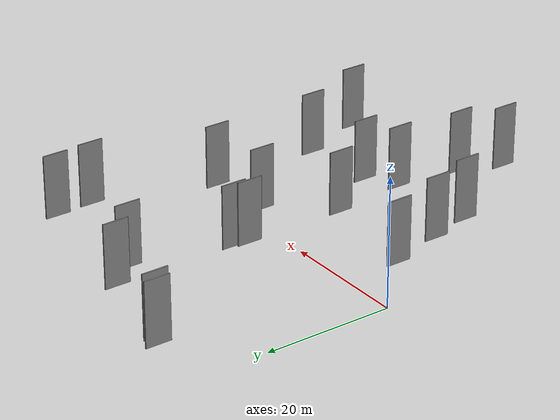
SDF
<sdf version="1.6">
 <world name="default">
  <scene>
   <sky><clouds><speed>12</speed></clouds></sky>
   <ambient>0.4 0.4 0.4 1</ambient>
   <background>0.7 0.7 0.7 1</background>
   <shadows>1</shadows>
  </scene>
  <gravity>0 0 -9.8066</gravity>
  <magnetic_field>6e-06 2.3e-05 -4.2e-05</magnetic_field>
  <physics default="0" name="default_physics" type="ode">
   <ode>
    <solver>
     <type>quick</type>
     <iters>10</iters>
     <sor>1.0</sor>
     <use_dynamic_moi_rescaling>0</use_dynamic_moi_rescaling>
    </solver>
    <constraints>
     <cfm>0</cfm>
     <erp>0.2</erp>
     <contact_max_correcting_vel>100</contact_max_correcting_vel>
     <contact_surface_layer>0.001</contact_surface_layer>
    </constraints>
   </ode>
   <max_step_size>0.004</max_step_size>
   <real_time_factor>1</real_time_factor>
   <real_time_update_rate>250</real_time_update_rate>
  </physics>
  <light name="sun" type="directional">
   <pose>0 0 10 0 0 0</pose>
   <diffuse>0.8 0.8 0.8 1</diffuse>
   <specular>0.2 0.2 0.2 1</specular>
   <attenuation>
    <range>1000</range>
    <constant>0.9</constant>
    <linear>0.01</linear>
    <quadratic>0.001</quadratic>
   </attenuation>
   <direction>-0.5 0.1 -0.9</direction>
  </light>
  <model name="grey_wall_1">
   <static>1</static>
   <pose>22.5808 -9.1110 2.5 0.000000 0.000000 1.570796</pose>
   <link name="link">
    <pose>0 0 5.00 0 0 0</pose>
    <collision name="collision"><geometry><box><size>4.00 0.2 10.00</size></box></geometry></collision>
    <visual name="visual">
     <cast_shadows>0</cast_shadows>
     <geometry><box><size>4.00 0.2 10.00</size></box></geometry>
     <material>
      <script>
       <uri>model://grey_wall/materials/scripts</uri>
       <uri>model://grey_wall/materials/textures</uri>
       <name>vrc/grey_wall</name>
      </script>
     </material>
    </visual>
   </link>
  </model>
  <model name="grey_wall_2">
   <static>1</static>
   <pose>5.6764 -6.3411 2.5 0.000000 0.000000 1.570796</pose>
   <link name="link">
    <pose>0 0 5.00 0 0 0</pose>
    <collision name="collision"><geometry><box><size>4.00 0.2 10.00</size></box></geometry></collision>
    <visual name="visual">
     <cast_shadows>0</cast_shadows>
     <geometry><box><size>4.00 0.2 10.00</size></box></geometry>
     <material>
      <script>
       <uri>model://grey_wall/materials/scripts</uri>
       <uri>model://grey_wall/materials/textures</uri>
       <name>vrc/grey_wall</name>
      </script>
     </material>
    </visual>
   </link>
  </model>
  <model name="grey_wall_3">
   <static>1</static>
   <pose>45.6201 24.6832 2.5 0.000000 0.000000 1.570796</pose>
   <link name="link">
    <pose>0 0 5.00 0 0 0</pose>
    <collision name="collision"><geometry><box><size>4.00 0.2 10.00</size></box></geometry></collision>
    <visual name="visual">
     <cast_shadows>0</cast_shadows>
     <geometry><box><size>4.00 0.2 10.00</size></box></geometry>
     <material>
      <script>
       <uri>model://grey_wall/materials/scripts</uri>
       <uri>model://grey_wall/materials/textures</uri>
       <name>vrc/grey_wall</name>
      </script>
     </material>
    </visual>
   </link>
  </model>
  <model name="grey_wall_4">
   <static>1</static>
   <pose>26.6358 24.5391 2.5 0.000000 0.000000 1.570796</pose>
   <link name="link">
    <pose>0 0 5.00 0 0 0</pose>
    <collision name="collision"><geometry><box><size>4.00 0.2 10.00</size></box></geometry></collision>
    <visual name="visual">
     <cast_shadows>0</cast_shadows>
     <geometry><box><size>4.00 0.2 10.00</size></box></geometry>
     <material>
      <script>
       <uri>model://grey_wall/materials/scripts</uri>
       <uri>model://grey_wall/materials/textures</uri>
       <name>vrc/grey_wall</name>
      </script>
     </material>
    </visual>
   </link>
  </model>
  <model name="grey_wall_5">
   <static>1</static>
   <pose>22.5919 6.9764 2.5 0.000000 0.000000 1.570796</pose>
   <link name="link">
    <pose>0 0 5.00 0 0 0</pose>
    <collision name="collision"><geometry><box><size>4.00 0.2 10.00</size></box></geometry></collision>
    <visual name="visual">
     <cast_shadows>0</cast_shadows>
     <geometry><box><size>4.00 0.2 10.00</size></box></geometry>
     <material>
      <script>
       <uri>model://grey_wall/materials/scripts</uri>
       <uri>model://grey_wall/materials/textures</uri>
       <name>vrc/grey_wall</name>
      </script>
     </material>
    </visual>
   </link>
  </model>
  <model name="grey_wall_6">
   <static>1</static>
   <pose>45.9478 18.6932 2.5 0.000000 0.000000 1.570796</pose>
   <link name="link">
    <pose>0 0 5.00 0 0 0</pose>
    <collision name="collision"><geometry><box><size>4.00 0.2 10.00</size></box></geometry></collision>
    <visual name="visual">
     <cast_shadows>0</cast_shadows>
     <geometry><box><size>4.00 0.2 10.00</size></box></geometry>
     <material>
      <script>
       <uri>model://grey_wall/materials/scripts</uri>
       <uri>model://grey_wall/materials/textures</uri>
       <name>vrc/grey_wall</name>
      </script>
     </material>
    </visual>
   </link>
  </model>
  <model name="grey_wall_7">
   <static>1</static>
   <pose>23.0688 9.3135 2.5 0.000000 0.000000 1.570796</pose>
   <link name="link">
    <pose>0 0 5.00 0 0 0</pose>
    <collision name="collision"><geometry><box><size>4.00 0.2 10.00</size></box></geometry></collision>
    <visual name="visual">
     <cast_shadows>0</cast_shadows>
     <geometry><box><size>4.00 0.2 10.00</size></box></geometry>
     <material>
      <script>
       <uri>model://grey_wall/materials/scripts</uri>
       <uri>model://grey_wall/materials/textures</uri>
       <name>vrc/grey_wall</name>
      </script>
     </material>
    </visual>
   </link>
  </model>
  <model name="grey_wall_8">
   <static>1</static>
   <pose>8.5506 31.7400 2.5 0.000000 0.000000 1.570796</pose>
   <link name="link">
    <pose>0 0 5.00 0 0 0</pose>
    <collision name="collision"><geometry><box><size>4.00 0.2 10.00</size></box></geometry></collision>
    <visual name="visual">
     <cast_shadows>0</cast_shadows>
     <geometry><box><size>4.00 0.2 10.00</size></box></geometry>
     <material>
      <script>
       <uri>model://grey_wall/materials/scripts</uri>
       <uri>model://grey_wall/materials/textures</uri>
       <name>vrc/grey_wall</name>
      </script>
     </material>
    </visual>
   </link>
  </model>
  <model name="grey_wall_9">
   <static>1</static>
   <pose>10.1609 -22.2072 2.5 0.000000 0.000000 1.570796</pose>
   <link name="link">
    <pose>0 0 5.00 0 0 0</pose>
    <collision name="collision"><geometry><box><size>4.00 0.2 10.00</size></box></geometry></collision>
    <visual name="visual">
     <cast_shadows>0</cast_shadows>
     <geometry><box><size>4.00 0.2 10.00</size></box></geometry>
     <material>
      <script>
       <uri>model://grey_wall/materials/scripts</uri>
       <uri>model://grey_wall/materials/textures</uri>
       <name>vrc/grey_wall</name>
      </script>
     </material>
    </visual>
   </link>
  </model>
  <model name="grey_wall_10">
   <static>1</static>
   <pose>30.0182 -0.4615 2.5 0.000000 0.000000 1.570796</pose>
   <link name="link">
    <pose>0 0 5.00 0 0 0</pose>
    <collision name="collision"><geometry><box><size>4.00 0.2 10.00</size></box></geometry></collision>
    <visual name="visual">
     <cast_shadows>0</cast_shadows>
     <geometry><box><size>4.00 0.2 10.00</size></box></geometry>
     <material>
      <script>
       <uri>model://grey_wall/materials/scripts</uri>
       <uri>model://grey_wall/materials/textures</uri>
       <name>vrc/grey_wall</name>
      </script>
     </material>
    </visual>
   </link>
  </model>
  <model name="grey_wall_11">
   <static>1</static>
   <pose>22.8264 -31.7088 2.5 0.000000 0.000000 1.570796</pose>
   <link name="link">
    <pose>0 0 5.00 0 0 0</pose>
    <collision name="collision"><geometry><box><size>4.00 0.2 10.00</size></box></geometry></collision>
    <visual name="visual">
     <cast_shadows>0</cast_shadows>
     <geometry><box><size>4.00 0.2 10.00</size></box></geometry>
     <material>
      <script>
       <uri>model://grey_wall/materials/scripts</uri>
       <uri>model://grey_wall/materials/textures</uri>
       <name>vrc/grey_wall</name>
      </script>
     </material>
    </visual>
   </link>
  </model>
  <model name="grey_wall_12">
   <static>1</static>
   <pose>6.7875 32.5967 2.5 0.000000 0.000000 1.570796</pose>
   <link name="link">
    <pose>0 0 5.00 0 0 0</pose>
    <collision name="collision"><geometry><box><size>4.00 0.2 10.00</size></box></geometry></collision>
    <visual name="visual">
     <cast_shadows>0</cast_shadows>
     <geometry><box><size>4.00 0.2 10.00</size></box></geometry>
     <material>
      <script>
       <uri>model://grey_wall/materials/scripts</uri>
       <uri>model://grey_wall/materials/textures</uri>
       <name>vrc/grey_wall</name>
      </script>
     </material>
    </visual>
   </link>
  </model>
  <model name="grey_wall_13">
   <static>1</static>
   <pose>20.1385 -38.0439 2.5 0.000000 0.000000 1.570796</pose>
   <link name="link">
    <pose>0 0 5.00 0 0 0</pose>
    <collision name="collision"><geometry><box><size>4.00 0.2 10.00</size></box></geometry></collision>
    <visual name="visual">
     <cast_shadows>0</cast_shadows>
     <geometry><box><size>4.00 0.2 10.00</size></box></geometry>
     <material>
      <script>
       <uri>model://grey_wall/materials/scripts</uri>
       <uri>model://grey_wall/materials/textures</uri>
       <name>vrc/grey_wall</name>
      </script>
     </material>
    </visual>
   </link>
  </model>
  <model name="grey_wall_14">
   <static>1</static>
   <pose>23.0761 28.6633 2.5 0.000000 0.000000 1.570796</pose>
   <link name="link">
    <pose>0 0 5.00 0 0 0</pose>
    <collision name="collision"><geometry><box><size>4.00 0.2 10.00</size></box></geometry></collision>
    <visual name="visual">
     <cast_shadows>0</cast_shadows>
     <geometry><box><size>4.00 0.2 10.00</size></box></geometry>
     <material>
      <script>
       <uri>model://grey_wall/materials/scripts</uri>
       <uri>model://grey_wall/materials/textures</uri>
       <name>vrc/grey_wall</name>
      </script>
     </material>
    </visual>
   </link>
  </model>
  <model name="grey_wall_15">
   <static>1</static>
   <pose>40.1334 0.4365 2.5 0.000000 0.000000 1.570796</pose>
   <link name="link">
    <pose>0 0 5.00 0 0 0</pose>
    <collision name="collision"><geometry><box><size>4.00 0.2 10.00</size></box></geometry></collision>
    <visual name="visual">
     <cast_shadows>0</cast_shadows>
     <geometry><box><size>4.00 0.2 10.00</size></box></geometry>
     <material>
      <script>
       <uri>model://grey_wall/materials/scripts</uri>
       <uri>model://grey_wall/materials/textures</uri>
       <name>vrc/grey_wall</name>
      </script>
     </material>
    </visual>
   </link>
  </model>
  <model name="grey_wall_16">
   <static>1</static>
   <pose>23.9790 -21.0546 2.5 0.000000 0.000000 1.570796</pose>
   <link name="link">
    <pose>0 0 5.00 0 0 0</pose>
    <collision name="collision"><geometry><box><size>4.00 0.2 10.00</size></box></geometry></collision>
    <visual name="visual">
     <cast_shadows>0</cast_shadows>
     <geometry><box><size>4.00 0.2 10.00</size></box></geometry>
     <material>
      <script>
       <uri>model://grey_wall/materials/scripts</uri>
       <uri>model://grey_wall/materials/textures</uri>
       <name>vrc/grey_wall</name>
      </script>
     </material>
    </visual>
   </link>
  </model>
  <model name="grey_wall_17">
   <static>1</static>
   <pose>44.7322 -28.3166 2.5 0.000000 0.000000 1.570796</pose>
   <link name="link">
    <pose>0 0 5.00 0 0 0</pose>
    <collision name="collision"><geometry><box><size>4.00 0.2 10.00</size></box></geometry></collision>
    <visual name="visual">
     <cast_shadows>0</cast_shadows>
     <geometry><box><size>4.00 0.2 10.00</size></box></geometry>
     <material>
      <script>
       <uri>model://grey_wall/materials/scripts</uri>
       <uri>model://grey_wall/materials/textures</uri>
       <name>vrc/grey_wall</name>
      </script>
     </material>
    </visual>
   </link>
  </model>
  <model name="grey_wall_18">
   <static>1</static>
   <pose>8.2341 -15.2511 2.5 0.000000 0.000000 1.570796</pose>
   <link name="link">
    <pose>0 0 5.00 0 0 0</pose>
    <collision name="collision"><geometry><box><size>4.00 0.2 10.00</size></box></geometry></collision>
    <visual name="visual">
     <cast_shadows>0</cast_shadows>
     <geometry><box><size>4.00 0.2 10.00</size></box></geometry>
     <material>
      <script>
       <uri>model://grey_wall/materials/scripts</uri>
       <uri>model://grey_wall/materials/textures</uri>
       <name>vrc/grey_wall</name>
      </script>
     </material>
    </visual>
   </link>
  </model>
  <model name="grey_wall_19">
   <static>1</static>
   <pose>40.8248 -17.6031 2.5 0.000000 0.000000 1.570796</pose>
   <link name="link">
    <pose>0 0 5.00 0 0 0</pose>
    <collision name="collision"><geometry><box><size>4.00 0.2 10.00</size></box></geometry></collision>
    <visual name="visual">
     <cast_shadows>0</cast_shadows>
     <geometry><box><size>4.00 0.2 10.00</size></box></geometry>
     <material>
      <script>
       <uri>model://grey_wall/materials/scripts</uri>
       <uri>model://grey_wall/materials/textures</uri>
       <name>vrc/grey_wall</name>
      </script>
     </material>
    </visual>
   </link>
  </model>
  <model name="grey_wall_20">
   <static>1</static>
   <pose>28.8561 -18.4506 2.5 0.000000 0.000000 1.570796</pose>
   <link name="link">
    <pose>0 0 5.00 0 0 0</pose>
    <collision name="collision"><geometry><box><size>4.00 0.2 10.00</size></box></geometry></collision>
    <visual name="visual">
     <cast_shadows>0</cast_shadows>
     <geometry><box><size>4.00 0.2 10.00</size></box></geometry>
     <material>
      <script>
       <uri>model://grey_wall/materials/scripts</uri>
       <uri>model://grey_wall/materials/textures</uri>
       <name>vrc/grey_wall</name>
      </script>
     </material>
    </visual>
   </link>
  </model>
 </world>
</sdf>
